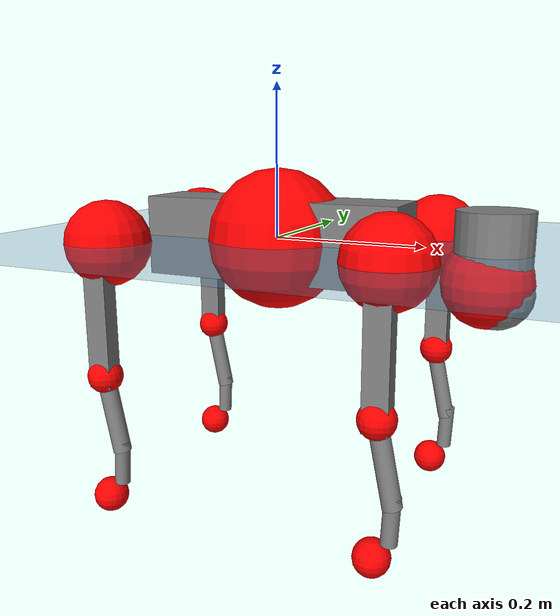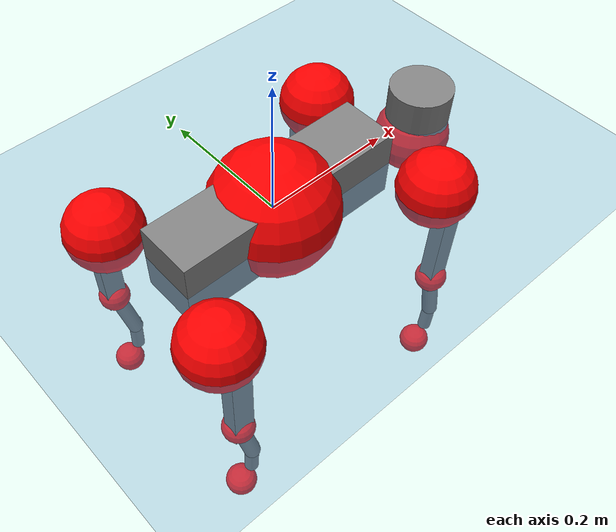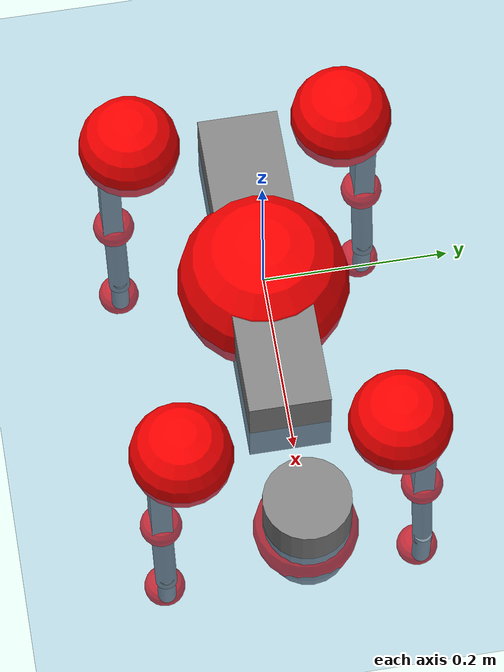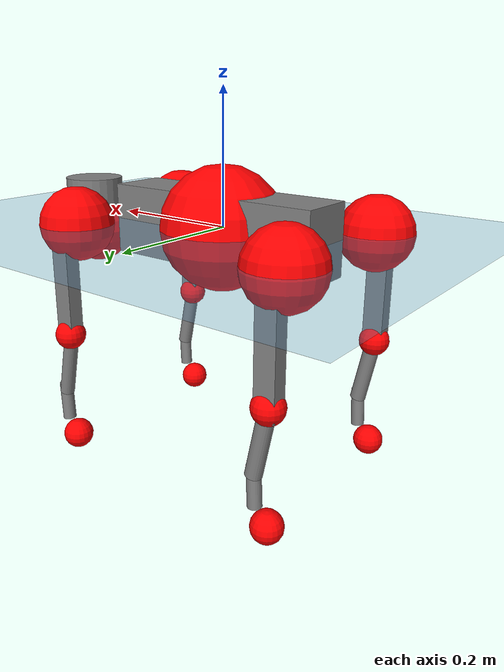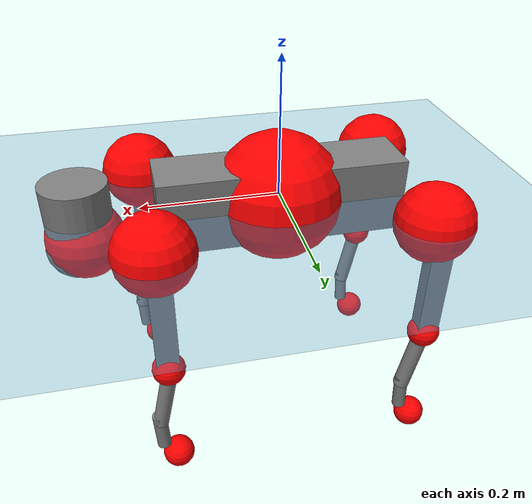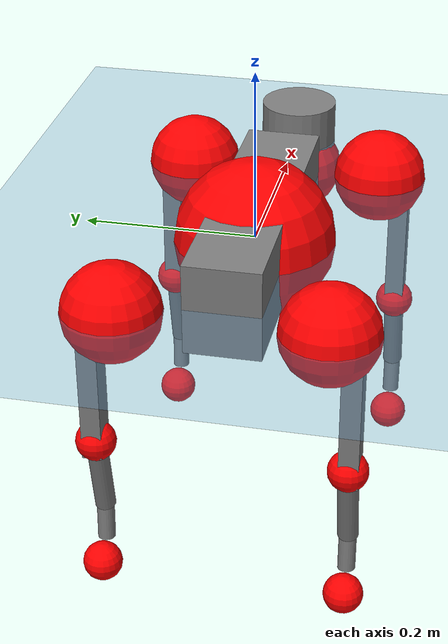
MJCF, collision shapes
<mujoco model="go2">
  <compiler angle="radian" assetdir="assets" balanceinertia="true" inertiafromgeom="false"/>

  <option timestep="0.005" density="1.2" viscosity="2e-05"/>

  <size nkey="1"/>

  <visual>
    <quality shadowsize="8192"/>
    <map shadowclip="0.5"/>
  </visual>

  <default>
    <default class="/">
      <geom contype="0" conaffinity="0" group="1" solref="-1000 -80"/>
      <site size="0.01 0.005 0.005" group="5"/>
      <general forcelimited="true" biastype="affine" gainprm="20" biasprm="0 -20 -0.5"/>
      <default class="go2">
        <joint armature="0.01" damping="0.01" frictionloss="0.2"/>
        <geom condim="1" margin="0.001"/>
        <default class="visual">
          <geom type="mesh" group="2"/>
        </default>
        <default class="collision">
          <geom group="3"/>
          <default class="foot">
            <geom size="0.022 0 0" condim="6" priority="1" friction="0.8 0.02 0.01" solimp="0.015 1 0.022"/>
          </default>
        </default>
        <default class="reward_collision_sphere">
          <geom group="5" rgba="1 0 0 1"/>
        </default>
      </default>
    </default>
  </default>

  <asset>
    <texture type="skybox" colorspace="auto" name="//unnamed_texture_0" builtin="gradient" rgb1="0.95 0.95 0.95" rgb2="0.95 0.95 0.95" width="100" height="600"/>
    <texture type="2d" colorspace="auto" name="texplane" builtin="checker" rgb1="0.345 0.575 0.748" rgb2="0.345 0.575 0.748" markrgb="1 1 1" width="512" height="512"/>
    <material name="MatPlane" class="/" texture="texplane" texuniform="true" texrepeat="2 2" specular="0.9"/>
    <material name="metal" class="/" rgba="0.9 0.95 0.95 1"/>
    <material name="black" class="/" rgba="0 0 0 1"/>
    <material name="white" class="/"/>
    <material name="gray" class="/" rgba="0.671705 0.692426 0.77427 1"/>
    <mesh name="base_0" class="/" file="base_0.obj"/>
    <mesh name="base_1" class="/" file="base_1.obj"/>
    <mesh name="base_2" class="/" file="base_2.obj"/>
    <mesh name="base_3" class="/" file="base_3.obj"/>
    <mesh name="base_4" class="/" file="base_4.obj"/>
    <mesh name="hip_0" class="/" file="hip_0.obj"/>
    <mesh name="hip_1" class="/" file="hip_1.obj"/>
    <mesh name="thigh_0" class="/" file="thigh_0.obj"/>
    <mesh name="thigh_1" class="/" file="thigh_1.obj"/>
    <mesh name="thigh_mirror_0" class="/" file="thigh_mirror_0.obj"/>
    <mesh name="thigh_mirror_1" class="/" file="thigh_mirror_1.obj"/>
    <mesh name="calf_0" class="/" file="calf_0.obj"/>
    <mesh name="calf_1" class="/" file="calf_1.obj"/>
    <mesh name="calf_mirror_0" class="/" file="calf_mirror_0.obj"/>
    <mesh name="calf_mirror_1" class="/" file="calf_mirror_1.obj"/>
    <mesh name="foot" class="/" file="foot.obj"/>
  </asset>

  <worldbody>
    <geom name="floor" class="/" size="100 100 0.125" type="plane" group="0" material="MatPlane"/>
    <light name="toplight_shadow" class="/" pos="0 0 5" dir="0.0990148 0.0990148 -0.990148" type="directional" ambient="0.04 0.04 0.04" diffuse="0.55 0.55 0.55" specular="0.12 0.12 0.12"/>
    <light name="toplight_fill" class="/" pos="0 0 5" dir="0.0990148 0.0990148 -0.990148" type="directional" castshadow="false" ambient="0.04 0.04 0.04" diffuse="0.3 0.3 0.3" specular="0.08 0.08 0.08"/>
    <body name="trunk" childclass="go2" pos="0.00100002 0.000218911 -0.000972835" quat="1 -0.000162382 -0.000188825 9.41104e-05">
      <inertial pos="0.018015 -0.0022571 -0.00363645" quat="0.00301908 0.714885 -0.000950166 0.699234" mass="5.84713" diaginertia="0.100691 0.10235 0.00840408"/>
      <joint name="//unnamed_joint_0" type="free" armature="0" damping="0" frictionloss="0"/>
      <geom name="//unnamed_geom_1" class="visual" material="black" mesh="base_0"/>
      <geom name="//unnamed_geom_2" class="visual" material="black" mesh="base_1"/>
      <geom name="//unnamed_geom_3" class="visual" material="black" mesh="base_2"/>
      <geom name="//unnamed_geom_4" class="visual" material="white" mesh="base_3"/>
      <geom name="//unnamed_geom_5" class="visual" material="gray" mesh="base_4"/>
      <geom name="trunk_1" class="collision" size="0.17563 0.0436507 0.0532212" type="box"/>
      <geom name="trunk_2" class="collision" size="0.0466853 0.0420168" pos="0.281138 0 0.00807841" type="cylinder"/>
      <geom name="trunk_3" class="collision" size="0.0438842" pos="0.289029 0 -0.0484704"/>
      <geom name="//unnamed_geom_9" class="reward_collision_sphere" size="0.0933706"/>
      <geom name="//unnamed_geom_10" class="reward_collision_sphere" size="0.0560223" pos="0.276206 0 -0.0363528"/>
      <site name="imu" pos="-0.0131533 -0.00040762 0.0221739" size="0.00933706"/>
      <camera name="track" pos="0 -2.01366 0" quat="0.707107 0.707107 0 0" mode="trackcom"/>
      <camera name="ego_camera" pos="0.307772 0 0.0363528" quat="-0.5 -0.5 0.5 0.5"/>
      <body name="FL_hip" pos="0.18843 0.0452447 0.000276346" quat="1 9.93753e-05 0.000164957 1.67225e-05">
        <inertial pos="-0.00515599 0.000926029 -0.000759202" quat="0.49701 0.499453 0.505499 0.497994" mass="0.53303" diaginertia="0.000796061 0.000583146 0.000160107"/>
        <joint name="FL_hip_joint" pos="0 0 0" axis="0.999999 0.00110799 0.000145129" range="-1.05116 1.03485" armature="0.00949218" damping="0.00551495" frictionloss="0.178609"/>
        <geom name="//unnamed_geom_11" class="visual" material="metal" mesh="hip_0"/>
        <geom name="//unnamed_geom_12" class="visual" material="gray" mesh="hip_1"/>
        <geom name="//unnamed_geom_13" class="collision" size="0.0429505 0.0186741" pos="0 0.0805463 0" quat="0.707107 0.707107 0 0" type="cylinder"/>
        <geom name="//unnamed_geom_14" class="reward_collision_sphere" size="0.0560223" pos="0 0.070478 0"/>
        <body name="FL_thigh" pos="-0.00114362 0.0980828 0.00191482" quat="0.999999 0.000943224 -0.000566139 -3.48371e-05">
          <inertial pos="-0.00369032 -0.0222476 -0.0262259" quat="0.829476 0.085184 -0.0121108 0.551875" mass="0.91912" diaginertia="0.00552804 0.00581341 0.000296585"/>
          <joint name="FL_thigh_joint" pos="0 0 0" axis="-0.00865015 0.999957 0.0033386" stiffness="0.00472998" range="-1.52431 3.50915" armature="0.00981677" damping="0.0124062" frictionloss="0.184613"/>
          <geom name="//unnamed_geom_15" class="visual" material="metal" mesh="thigh_0"/>
          <geom name="//unnamed_geom_16" class="visual" material="gray" mesh="thigh_1"/>
          <geom name="//unnamed_geom_17" class="collision" size="0.0994397 0.0114379 0.015873" pos="0 0 -0.086035" quat="0.707107 0 0.707107 0" type="box"/>
          <body name="FL_calf" pos="-0.000570269 0.00114337 -0.171839" quat="1 0.000230504 0.00013683 3.19296e-05">
            <inertial pos="0.00665756 -0.00136753 -0.113591" quat="0.711084 0.00193109 -0.00481429 0.703088" mass="0.197023" diaginertia="0.00136648 0.00153072 1.82177e-05"/>
            <joint name="FL_calf_joint" pos="0 0 0" axis="-0.0033118 0.999975 0.00622673" range="-2.70883 -0.843378" armature="0.00888654" damping="0.00154406" frictionloss="0.184286"/>
            <geom name="//unnamed_geom_18" class="visual" material="gray" mesh="calf_0"/>
            <geom name="//unnamed_geom_19" class="visual" material="black" mesh="calf_1"/>
            <geom name="FL_calf0" class="collision" size="0.0112045 0.0560223" pos="0.00789159 0 -0.0484704" quat="0.994493 0 -0.104807 0" type="cylinder"/>
            <geom name="//unnamed_geom_21" class="collision" size="0.0102708 0.0303454" pos="0.019729 0 -0.11956" quat="0.999688 0 0.0249974 0" type="cylinder"/>
            <geom name="//unnamed_geom_22" class="visual" pos="0 0 -0.17207" quat="1 0 0 0" material="black" mesh="foot"/>
            <geom name="FL_foot" class="foot" size="0.0170199" pos="-0.0019729 0 -0.17207"/>
            <geom name="//unnamed_geom_24" class="reward_collision_sphere" size="0.0233426"/>
            <geom name="//unnamed_geom_25" class="reward_collision_sphere" size="0.0233426" pos="-0.0019729 0 -0.17207"/>
            <site name="FL_foot" class="foot" pos="-0.0019729 0 -0.17207" size="0.00933706"/>
          </body>
        </body>
      </body>
      <body name="FR_hip" pos="0.18889 -0.0477027 0.000769021" quat="1 7.26141e-06 6.33104e-07 3.58354e-06">
        <inertial pos="-0.00565844 -0.00439135 -0.00124758" quat="0.499559 0.494665 0.505093 0.500628" mass="0.545738" diaginertia="0.000804529 0.000632117 0.000161428"/>
        <joint name="FR_hip_joint" pos="0 0 0" axis="0.99993 -0.00877011 -0.0079481" range="-1.05994 1.05708" armature="0.00933235" damping="0.00148639" frictionloss="0.178381"/>
        <geom name="//unnamed_geom_26" class="visual" pos="0 1.7335e-09 7.43533e-08" quat="4.63268e-05 1 0 0" material="metal" mesh="hip_0"/>
        <geom name="//unnamed_geom_27" class="visual" pos="0 2.81021e-09 -1.83904e-07" quat="4.63268e-05 1 0 0" material="gray" mesh="hip_1"/>
        <geom name="//unnamed_geom_28" class="collision" size="0.0429505 0.0186741" pos="0 -0.0805463 0" quat="0.707107 0.707107 0 0" type="cylinder"/>
        <geom name="//unnamed_geom_29" class="reward_collision_sphere" size="0.0560223" pos="0 -0.070478 0"/>
        <body name="FR_thigh" pos="0.000510693 -0.0970143 -0.00182384" quat="0.999999 0.000150857 -0.000542759 0.000832858">
          <inertial pos="-0.00119975 0.0235654 -0.0266099" quat="0.550567 -0.0198114 0.0835694 0.830361" mass="0.964085" diaginertia="0.00555366 0.00594288 0.000313834"/>
          <joint name="FR_thigh_joint" pos="0 0 0" axis="-0.00236157 -0.999993 0.00294914" range="-3.51123 1.58679" armature="0.00901738" damping="0.00911634" frictionloss="0.180585"/>
          <geom name="//unnamed_geom_30" class="visual" material="metal" mesh="thigh_mirror_0"/>
          <geom name="//unnamed_geom_31" class="visual" material="gray" mesh="thigh_mirror_1"/>
          <geom name="//unnamed_geom_32" class="collision" size="0.0994397 0.0114379 0.015873" pos="0 0 -0.086035" quat="0.707107 0 0.707107 0" type="box"/>
          <body name="FR_calf" pos="-0.000188501 0.000188116 -0.170912" quat="1 0.000166076 7.22047e-05 5.9536e-05">
            <inertial pos="0.00467675 0.000761824 -0.114546" quat="0.701046 0.00316888 0.0111856 0.713021" mass="0.201291" diaginertia="0.00140741 0.00155431 1.86282e-05"/>
            <joint name="FR_calf_joint" pos="0 0 0" axis="-0.00124744 -0.999997 0.00200106" range="0.787662 2.7155" armature="0.0102271" damping="0.019846" frictionloss="0.181996"/>
            <geom name="//unnamed_geom_33" class="visual" material="gray" mesh="calf_mirror_0"/>
            <geom name="//unnamed_geom_34" class="visual" material="black" mesh="calf_mirror_1"/>
            <geom name="FR_calf0" class="collision" size="0.0121382 0.0560223" pos="0.00986448 0 -0.0484704" quat="0.995004 0 -0.0998334 0" type="cylinder"/>
            <geom name="//unnamed_geom_36" class="collision" size="0.0102708 0.0303454" pos="0.019729 0 -0.11956" quat="0.999688 0 0.0249974 0" type="cylinder"/>
            <geom name="//unnamed_geom_37" class="visual" pos="0 0 -0.17207" quat="1 0 0 0" material="black" mesh="foot"/>
            <geom name="FR_foot" class="foot" size="0.0213659" pos="-0.0019729 0 -0.17207"/>
            <geom name="//unnamed_geom_39" class="reward_collision_sphere" size="0.0233426"/>
            <geom name="//unnamed_geom_40" class="reward_collision_sphere" size="0.0233426" pos="-0.0019729 0 -0.17207"/>
            <site name="FR_foot" class="foot" pos="-0.0019729 0 -0.17207" size="0.00933706"/>
          </body>
        </body>
      </body>
      <body name="RL_hip" pos="-0.188513 0.0465018 -0.00291235" quat="1 -0.000175582 -6.50476e-05 0.000150405">
        <inertial pos="0.00528628 0.00323565 -0.00208001" quat="0.502323 0.500776 0.491957 0.504849" mass="0.568167" diaginertia="0.000879087 0.000642348 0.000170209"/>
        <joint name="RL_hip_joint" pos="0 0 0" axis="-0.99988 -0.005908 0.0143057" stiffness="0.00165036" range="-1.04277 1.02659" armature="0.00926829" damping="0" frictionloss="0.185697"/>
        <geom name="//unnamed_geom_41" class="visual" pos="-1.55596e-09 0 -3.05003e-07" quat="4.63268e-05 0 1 0" material="metal" mesh="hip_0"/>
        <geom name="//unnamed_geom_42" class="visual" pos="-2.52239e-09 0 -2.70495e-07" quat="4.63268e-05 0 1 0" material="gray" mesh="hip_1"/>
        <geom name="//unnamed_geom_43" class="collision" size="0.0429505 0.0186741" pos="0 0.0805463 0" quat="0.707107 0.707107 0 0" type="cylinder"/>
        <geom name="//unnamed_geom_44" class="reward_collision_sphere" size="0.0560223" pos="0 0.070478 0"/>
        <body name="RL_thigh" pos="-8.99795e-05 0.097116 -0.00014095" quat="1 1.80538e-05 0.000321457 0.000320715">
          <inertial pos="-0.00619131 -0.0232718 -0.0290275" quat="0.830047 0.0844635 -0.0186466 0.550944" mass="0.933157" diaginertia="0.00530184 0.00604089 0.000294765"/>
          <joint name="RL_thigh_joint" pos="0 0 0" axis="0.00600347 0.999955 -0.00733794" stiffness="0.0143591" range="-0.518574 4.51983" armature="0.00900585" damping="0" frictionloss="0.186171"/>
          <geom name="//unnamed_geom_45" class="visual" material="metal" mesh="thigh_0"/>
          <geom name="//unnamed_geom_46" class="visual" material="gray" mesh="thigh_1"/>
          <geom name="//unnamed_geom_47" class="collision" size="0.0994397 0.0114379 0.015873" pos="0 0 -0.086035" quat="0.707107 0 0.707107 0" type="box"/>
          <body name="RL_calf" pos="0.000668075 -0.000574395 -0.171061" quat="1 -2.16232e-06 -4.62667e-06 -2.17006e-05">
            <inertial pos="0.0060118 0.00174595 -0.113091" quat="0.711727 0.00393847 -0.00565586 0.702422" mass="0.202949" diaginertia="0.0014204 0.00160462 1.86313e-05"/>
            <joint name="RL_calf_joint" pos="0 0 0" axis="-0.00599372 0.999899 0.0128699" range="-2.68026 -0.859855" armature="0.0104511" damping="0.0133891" frictionloss="0.169321"/>
            <geom name="//unnamed_geom_48" class="visual" material="gray" mesh="calf_0"/>
            <geom name="//unnamed_geom_49" class="visual" material="black" mesh="calf_1"/>
            <geom name="RL_calf0" class="collision" size="0.0121382 0.0560223" pos="0.00986448 0 -0.0484704" quat="0.995004 0 -0.0998334 0" type="cylinder"/>
            <geom name="//unnamed_geom_51" class="collision" size="0.0102708 0.0303454" pos="0.019729 0 -0.11956" quat="0.999688 0 0.0249974 0" type="cylinder"/>
            <geom name="//unnamed_geom_52" class="visual" pos="0 0 -0.17207" quat="1 0 0 0" material="black" mesh="foot"/>
            <geom name="RL_foot" class="foot" size="0.0179552" pos="-0.0019729 0 -0.17207"/>
            <geom name="//unnamed_geom_54" class="reward_collision_sphere" size="0.0233426"/>
            <geom name="//unnamed_geom_55" class="reward_collision_sphere" size="0.0233426" pos="-0.0019729 0 -0.17207"/>
            <site name="RL_foot" class="foot" pos="-0.0019729 0 -0.17207" size="0.00933706"/>
          </body>
        </body>
      </body>
      <body name="RR_hip" pos="-0.188218 -0.0475611 -0.00186088" quat="1 -0.000148416 -0.000160147 0.000151659">
        <inertial pos="0.00482978 -0.0018815 -0.00263532" quat="0.510339 0.494953 0.494045 0.500495" mass="0.546553" diaginertia="0.000801064 0.000594487 0.000159608"/>
        <joint name="RR_hip_joint" pos="0 0 0" axis="-0.999924 -0.0105617 0.00641883" stiffness="0.0036611" range="-1.09051 1.04285" armature="0.00965342" damping="0.00542763" frictionloss="0.18684"/>
        <geom name="//unnamed_geom_56" class="visual" pos="1.55666e-09 1.7335e-09 -3.79357e-07" quat="2.14617e-09 4.63268e-05 4.63268e-05 -1" material="metal" mesh="hip_0"/>
        <geom name="//unnamed_geom_57" class="visual" pos="2.52065e-09 2.81021e-09 -8.65905e-08" quat="2.14617e-09 4.63268e-05 4.63268e-05 -1" material="gray" mesh="hip_1"/>
        <geom name="//unnamed_geom_58" class="collision" size="0.0429505 0.0186741" pos="0 -0.0805463 0" quat="0.707107 0.707107 0 0" type="cylinder"/>
        <geom name="//unnamed_geom_59" class="reward_collision_sphere" size="0.0560223" pos="0 -0.070478 0"/>
        <body name="RR_thigh" pos="0.00258845 -0.0965219 -0.00190911" quat="1 0.000699044 0.000326693 0.000562822">
          <inertial pos="-0.00363714 0.0228223 -0.0274715" quat="0.55098 -0.0193834 0.0852707 0.829925" mass="0.913755" diaginertia="0.00541199 0.00595886 0.000299816"/>
          <joint name="RR_thigh_joint" pos="0 0 0" axis="-0.000785091 -0.999987 0.00509713" stiffness="0.00186251" range="-4.53138 0.546657" armature="0.00955281" damping="0.0114012" frictionloss="0.188028"/>
          <geom name="//unnamed_geom_60" class="visual" material="metal" mesh="thigh_mirror_0"/>
          <geom name="//unnamed_geom_61" class="visual" material="gray" mesh="thigh_mirror_1"/>
          <geom name="//unnamed_geom_62" class="collision" size="0.0994397 0.0114379 0.015873" pos="0 0 -0.086035" quat="0.707107 0 0.707107 0" type="box"/>
          <body name="RR_calf" pos="-0.000577467 0.00186986 -0.171534" quat="0.999999 -0.000801297 0.000361358 -0.000745792">
            <inertial pos="0.00775952 0.00114842 -0.115379" quat="0.70083 -0.00630788 0.00800443 0.713256" mass="0.200416" diaginertia="0.00139696 0.00151574 1.83995e-05"/>
            <joint name="RR_calf_joint" pos="0 0 0" axis="0.00306915 -0.999994 0.00147069" range="0.839504 2.77245" armature="0.00931397" damping="0.0182596" frictionloss="0.181402"/>
            <geom name="//unnamed_geom_63" class="visual" material="gray" mesh="calf_mirror_0"/>
            <geom name="//unnamed_geom_64" class="visual" material="black" mesh="calf_mirror_1"/>
            <geom name="RR_calf0" class="collision" size="0.0121382 0.0560223" pos="0.00986448 0 -0.0484704" quat="0.995004 0 -0.0998334 0" type="cylinder"/>
            <geom name="//unnamed_geom_66" class="collision" size="0.0102708 0.0303454" pos="0.019729 0 -0.11956" quat="0.999688 0 0.0249974 0" type="cylinder"/>
            <geom name="//unnamed_geom_67" class="visual" pos="0 0 -0.17207" quat="1 0 0 0" material="black" mesh="foot"/>
            <geom name="RR_foot" class="foot" size="0.021029" pos="-0.0019729 0 -0.17207"/>
            <geom name="//unnamed_geom_69" class="reward_collision_sphere" size="0.0233426"/>
            <geom name="//unnamed_geom_70" class="reward_collision_sphere" size="0.0233426" pos="-0.0019729 0 -0.17207"/>
            <site name="RR_foot" class="foot" pos="-0.0019729 0 -0.17207" size="0.00933706"/>
          </body>
        </body>
      </body>
    </body>
  </worldbody>

  <contact>
    <pair class="/" geom1="floor" geom2="FL_foot" name="//unnamed_contact_0"/>
    <pair class="/" geom1="floor" geom2="FR_foot" name="//unnamed_contact_1"/>
    <pair class="/" geom1="floor" geom2="RL_foot" name="//unnamed_contact_2"/>
    <pair class="/" geom1="floor" geom2="RR_foot" name="//unnamed_contact_3"/>
  </contact>

  <actuator>
    <general name="FL_hip" class="/" joint="FL_hip_joint" forcerange="-20.7195 20.7195" gainprm="18.6946" biasprm="0 -18.6946 -0.46487"/>
    <general name="FL_thigh" class="/" joint="FL_thigh_joint" forcerange="-20.0795 20.0795" gainprm="18.6946" biasprm="0 -18.6946 -0.46487"/>
    <general name="FL_calf" class="/" joint="FL_calf_joint" forcerange="-43.7692 43.7692" gainprm="18.6946" biasprm="0 -18.6946 -0.46487"/>
    <general name="FR_hip" class="/" joint="FR_hip_joint" forcerange="-22.1213 22.1213" gainprm="18.6946" biasprm="0 -18.6946 -0.46487"/>
    <general name="FR_thigh" class="/" joint="FR_thigh_joint" forcerange="-23.0277 23.0277" gainprm="18.6946" biasprm="0 -18.6946 -0.46487"/>
    <general name="FR_calf" class="/" joint="FR_calf_joint" forcerange="-43.2674 43.2674" gainprm="18.6946" biasprm="0 -18.6946 -0.46487"/>
    <general name="RL_hip" class="/" joint="RL_hip_joint" forcerange="-22.2707 22.2707" gainprm="18.6946" biasprm="0 -18.6946 -0.46487"/>
    <general name="RL_thigh" class="/" joint="RL_thigh_joint" forcerange="-21.1127 21.1127" gainprm="18.6946" biasprm="0 -18.6946 -0.46487"/>
    <general name="RL_calf" class="/" joint="RL_calf_joint" forcerange="-41.0418 41.0418" gainprm="18.6946" biasprm="0 -18.6946 -0.46487"/>
    <general name="RR_hip" class="/" joint="RR_hip_joint" forcerange="-22.1991 22.1991" gainprm="18.6946" biasprm="0 -18.6946 -0.46487"/>
    <general name="RR_thigh" class="/" joint="RR_thigh_joint" forcerange="-23.8455 23.8455" gainprm="18.6946" biasprm="0 -18.6946 -0.46487"/>
    <general name="RR_calf" class="/" joint="RR_calf_joint" forcerange="-40.862 40.862" gainprm="18.6946" biasprm="0 -18.6946 -0.46487"/>
  </actuator>

  <sensor>
    <gyro site="imu" name="imu_angular_velocity"/>
    <velocimeter site="imu" name="imu_linear_velocity"/>
    <framelinvel objtype="site" objname="FL_foot" name="FL_foot_global_linear_velocity"/>
    <framelinvel objtype="site" objname="FR_foot" name="FR_foot_global_linear_velocity"/>
    <framelinvel objtype="site" objname="RL_foot" name="RL_foot_global_linear_velocity"/>
    <framelinvel objtype="site" objname="RR_foot" name="RR_foot_global_linear_velocity"/>
  </sensor>

  <keyframe>
    <key name="home" qpos="0 0 0.325 1 0 0 0 0.1 0.8 -1.5 -0.1 -0.8 1.5 -0.1 0.8 -1.5 0.1 -0.8 1.5"/>
  </keyframe>
</mujoco>
